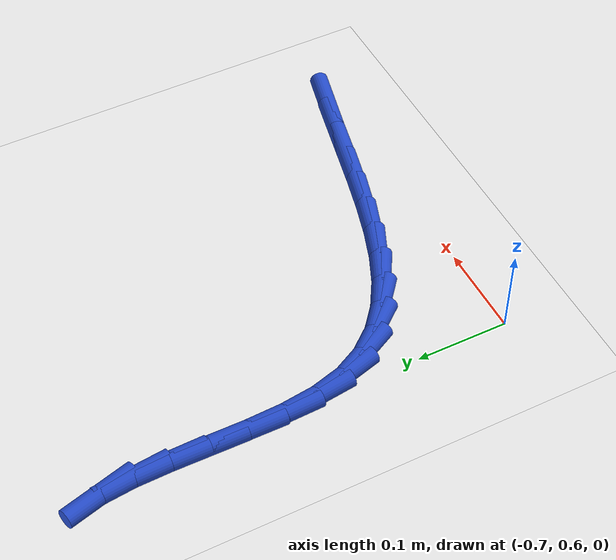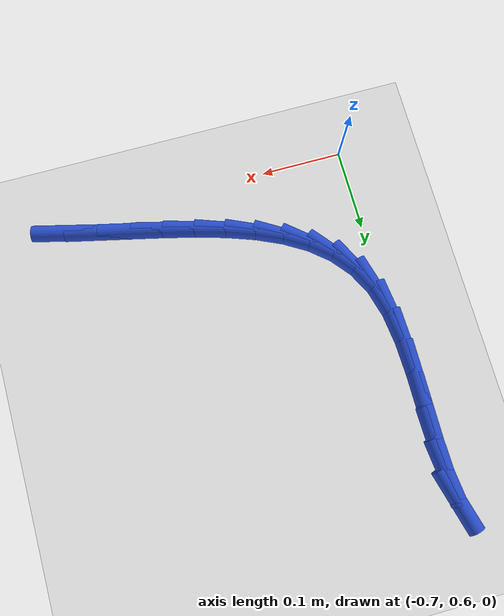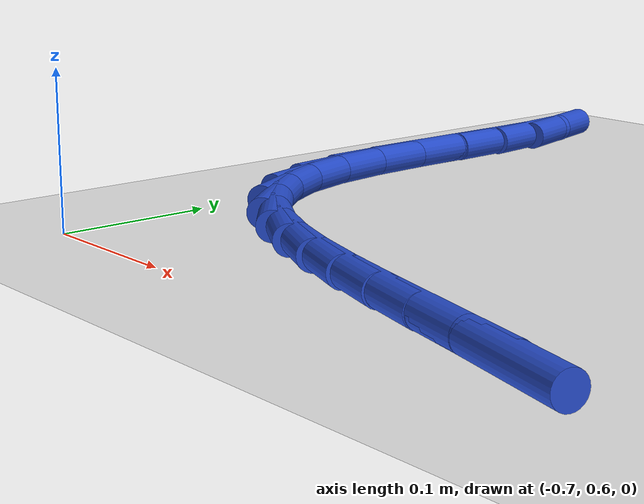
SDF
<sdf version="1.6">
 <world name="default">
  <model name="ground_plane">
   <static>1</static>
   <link name="link">
    <collision name="collision">
     <geometry><plane><normal>0 0 1</normal><size>100 100</size></plane></geometry>
     <surface><friction><ode><mu>100</mu><mu2>50</mu2></ode></friction></surface>
    </collision>
    <visual name="visual">
     <cast_shadows>0</cast_shadows>
     <geometry><plane><normal>0 0 1</normal><size>100 100</size></plane></geometry>
     <material>
      <script><uri>file://media/materials/scripts/gazebo.material</uri><name>Gazebo/WhiteGlow</name></script>
     </material>
    </visual>
   </link>
  </model>
  <model name="line">
   <link name="link_21">
    <pose>-0.3428353714682156 0.6141442793500697 0.01 0 1.57 -0.2414987292422664</pose>
    <collision name="collision">
     <geometry><cylinder><radius>0.01</radius><length>0.08</length></cylinder></geometry>
    </collision>
    <visual name="visual">
     <material>
      <script><name>Gazebo/Blue</name><uri>file://media/materials/scripts/gazebo.material</uri></script>
     </material>
     <geometry><cylinder><radius>0.01</radius><length>0.08</length></cylinder></geometry>
    </visual>
   </link>
   <link name="link_22">
    <pose>-0.3820970798921073 0.6238146646456812 0.01 0 1.57 -0.22563169829701232</pose>
    <collision name="collision">
     <geometry><cylinder><radius>0.01</radius><length>0.08</length></cylinder></geometry>
    </collision>
    <visual name="visual">
     <material>
      <script><name>Gazebo/Blue</name><uri>file://media/materials/scripts/gazebo.material</uri></script>
     </material>
     <geometry><cylinder><radius>0.01</radius><length>0.08</length></cylinder></geometry>
    </visual>
   </link>
   <link name="link_23">
    <pose>-0.4216385994627611 0.6328910351533592 0.01 0 1.57 -0.22663290043007644</pose>
    <collision name="collision">
     <geometry><cylinder><radius>0.01</radius><length>0.08</length></cylinder></geometry>
    </collision>
    <visual name="visual">
     <material>
      <script><name>Gazebo/Blue</name><uri>file://media/materials/scripts/gazebo.material</uri></script>
     </material>
     <geometry><cylinder><radius>0.01</radius><length>0.08</length></cylinder></geometry>
    </visual>
   </link>
   <link name="link_24">
    <pose>-0.4608541206352096 0.6419339167832943 0.01 0 1.57 -0.24495384160686315</pose>
    <collision name="collision">
     <geometry><cylinder><radius>0.01</radius><length>0.08</length></cylinder></geometry>
    </collision>
    <visual name="visual">
     <material>
      <script><name>Gazebo/Blue</name><uri>file://media/materials/scripts/gazebo.material</uri></script>
     </material>
     <geometry><cylinder><radius>0.01</radius><length>0.08</length></cylinder></geometry>
    </visual>
   </link>
   <link name="link_25">
    <pose>-0.49913783386448574 0.6515038354456776 0.01 0 1.57 -0.28228538208518905</pose>
    <collision name="collision">
     <geometry><cylinder><radius>0.01</radius><length>0.08</length></cylinder></geometry>
    </collision>
    <visual name="visual">
     <material>
      <script><name>Gazebo/Blue</name><uri>file://media/materials/scripts/gazebo.material</uri></script>
     </material>
     <geometry><cylinder><radius>0.01</radius><length>0.08</length></cylinder></geometry>
    </visual>
   </link>
   <link name="link_26">
    <pose>-0.5358839296056216 0.662161317050699 0.01 0 1.57 -0.3416770474934047</pose>
    <collision name="collision">
     <geometry><cylinder><radius>0.01</radius><length>0.08</length></cylinder></geometry>
    </collision>
    <visual name="visual">
     <material>
      <script><name>Gazebo/Blue</name><uri>file://media/materials/scripts/gazebo.material</uri></script>
     </material>
     <geometry><cylinder><radius>0.01</radius><length>0.08</length></cylinder></geometry>
    </visual>
   </link>
   <link name="link_27">
    <pose>-0.5704865983136503 0.6744668875085497 0.01 0 1.57 -0.4275469131294563</pose>
    <collision name="collision">
     <geometry><cylinder><radius>0.01</radius><length>0.08</length></cylinder></geometry>
    </collision>
    <visual name="visual">
     <material>
      <script><name>Gazebo/Blue</name><uri>file://media/materials/scripts/gazebo.material</uri></script>
     </material>
     <geometry><cylinder><radius>0.01</radius><length>0.08</length></cylinder></geometry>
    </visual>
   </link>
   <link name="link_28">
    <pose>-0.6023400304436043 0.6889810727294201 0.01 0 1.57 -0.5451609611070342</pose>
    <collision name="collision">
     <geometry><cylinder><radius>0.01</radius><length>0.08</length></cylinder></geometry>
    </collision>
    <visual name="visual">
     <material>
      <script><name>Gazebo/Blue</name><uri>file://media/materials/scripts/gazebo.material</uri></script>
     </material>
     <geometry><cylinder><radius>0.01</radius><length>0.08</length></cylinder></geometry>
    </visual>
   </link>
   <link name="link_29">
    <pose>-0.6308384164505163 0.7062643986235011 0.01 0 1.57 -0.6986948762659486</pose>
    <collision name="collision">
     <geometry><cylinder><radius>0.01</radius><length>0.08</length></cylinder></geometry>
    </collision>
    <visual name="visual">
     <material>
      <script><name>Gazebo/Blue</name><uri>file://media/materials/scripts/gazebo.material</uri></script>
     </material>
     <geometry><cylinder><radius>0.01</radius><length>0.08</length></cylinder></geometry>
    </visual>
   </link>
   <link name="link_30">
    <pose>-0.655375946789419 0.7268773911009834 0.01 0 1.57 -0.8869568642156067</pose>
    <collision name="collision">
     <geometry><cylinder><radius>0.01</radius><length>0.08</length></cylinder></geometry>
    </collision>
    <visual name="visual">
     <material>
      <script><name>Gazebo/Blue</name><uri>file://media/materials/scripts/gazebo.material</uri></script>
     </material>
     <geometry><cylinder><radius>0.01</radius><length>0.08</length></cylinder></geometry>
    </visual>
   </link>
   <link name="link_31">
    <pose>-0.6753468119153448 0.7513805760720571 0.01 0 1.57 -1.0983068221468184</pose>
    <collision name="collision">
     <geometry><cylinder><radius>0.01</radius><length>0.08</length></cylinder></geometry>
    </collision>
    <visual name="visual">
     <material>
      <script><name>Gazebo/Blue</name><uri>file://media/materials/scripts/gazebo.material</uri></script>
     </material>
     <geometry><cylinder><radius>0.01</radius><length>0.08</length></cylinder></geometry>
    </visual>
   </link>
   <link name="link_32">
    <pose>-0.6901452022833267 0.7803344794469136 0.01 0 1.57 -1.304767397000657</pose>
    <collision name="collision">
     <geometry><cylinder><radius>0.01</radius><length>0.08</length></cylinder></geometry>
    </collision>
    <visual name="visual">
     <material>
      <script><name>Gazebo/Blue</name><uri>file://media/materials/scripts/gazebo.material</uri></script>
     </material>
     <geometry><cylinder><radius>0.01</radius><length>0.08</length></cylinder></geometry>
    </visual>
   </link>
   <link name="link_33">
    <pose>-0.6993503481458103 0.8141163719011468 0.01 0 1.57 -1.4513886290767635</pose>
    <collision name="collision">
     <geometry><cylinder><radius>0.01</radius><length>0.08</length></cylinder></geometry>
    </collision>
    <visual name="visual">
     <material>
      <script><name>Gazebo/Blue</name><uri>file://media/materials/scripts/gazebo.material</uri></script>
     </material>
     <geometry><cylinder><radius>0.01</radius><length>0.08</length></cylinder></geometry>
    </visual>
   </link>
   <link name="link_34">
    <pose>-0.7038700985597063 0.8517877187857396 0.01 0 1.57 -1.5377775892442451</pose>
    <collision name="collision">
     <geometry><cylinder><radius>0.01</radius><length>0.08</length></cylinder></geometry>
    </collision>
    <visual name="visual">
     <material>
      <script><name>Gazebo/Blue</name><uri>file://media/materials/scripts/gazebo.material</uri></script>
     </material>
     <geometry><cylinder><radius>0.01</radius><length>0.08</length></cylinder></geometry>
    </visual>
   </link>
   <link name="link_35">
    <pose>-0.7051928898969547 0.8918349974431133 0.01 0 1.57 1.5614266939043104</pose>
    <collision name="collision">
     <geometry><cylinder><radius>0.01</radius><length>0.08</length></cylinder></geometry>
    </collision>
    <visual name="visual">
     <material>
      <script><name>Gazebo/Blue</name><uri>file://media/materials/scripts/gazebo.material</uri></script>
     </material>
     <geometry><cylinder><radius>0.01</radius><length>0.08</length></cylinder></geometry>
    </visual>
   </link>
   <link name="link_36">
    <pose>-0.7048095925097905 0.932742274709213 0.01 0 1.57 1.5559279618136346</pose>
    <collision name="collision">
     <geometry><cylinder><radius>0.01</radius><length>0.08</length></cylinder></geometry>
    </collision>
    <visual name="visual">
     <material>
      <script><name>Gazebo/Blue</name><uri>file://media/materials/scripts/gazebo.material</uri></script>
     </material>
     <geometry><cylinder><radius>0.01</radius><length>0.08</length></cylinder></geometry>
    </visual>
   </link>
   <link name="link_37">
    <pose>-0.7042110767504483 0.9729936174199837 0.01 0 1.57 -1.5530160169854506</pose>
    <collision name="collision">
     <geometry><cylinder><radius>0.01</radius><length>0.08</length></cylinder></geometry>
    </collision>
    <visual name="visual">
     <material>
      <script><name>Gazebo/Blue</name><uri>file://media/materials/scripts/gazebo.material</uri></script>
     </material>
     <geometry><cylinder><radius>0.01</radius><length>0.08</length></cylinder></geometry>
    </visual>
   </link>
   <link name="link_38">
    <pose>-0.7048882129711634 1.0110730924113704 0.01 0 1.57 -1.4709983808611913</pose>
    <collision name="collision">
     <geometry><cylinder><radius>0.01</radius><length>0.08</length></cylinder></geometry>
    </collision>
    <visual name="visual">
     <material>
      <script><name>Gazebo/Blue</name><uri>file://media/materials/scripts/gazebo.material</uri></script>
     </material>
     <geometry><cylinder><radius>0.01</radius><length>0.08</length></cylinder></geometry>
    </visual>
   </link>
   <link name="link_39">
    <pose>-0.7083318715241704 1.0454647665193184 0.01 0 1.57 -1.3128314240442829</pose>
    <collision name="collision">
     <geometry><cylinder><radius>0.01</radius><length>0.08</length></cylinder></geometry>
    </collision>
    <visual name="visual">
     <material>
      <script><name>Gazebo/Blue</name><uri>file://media/materials/scripts/gazebo.material</uri></script>
     </material>
     <geometry><cylinder><radius>0.01</radius><length>0.08</length></cylinder></geometry>
    </visual>
   </link>
  </model>
 </world>
</sdf>
